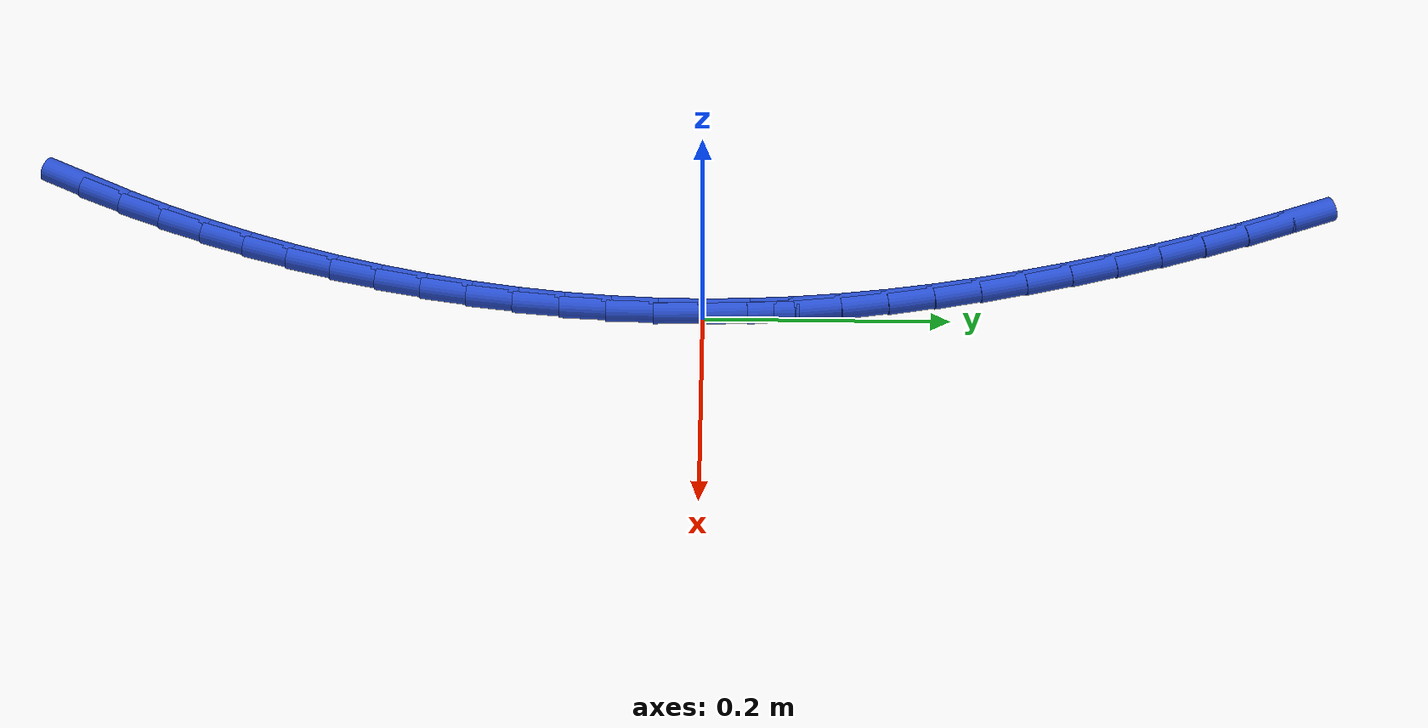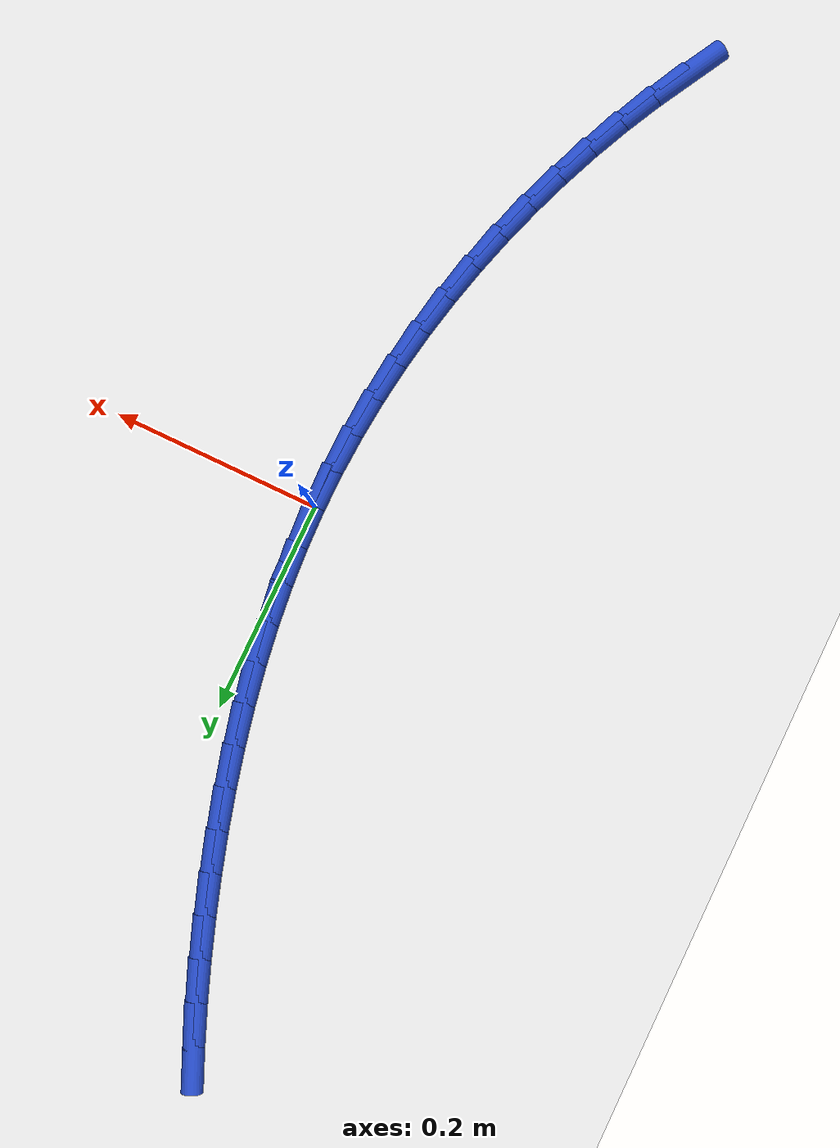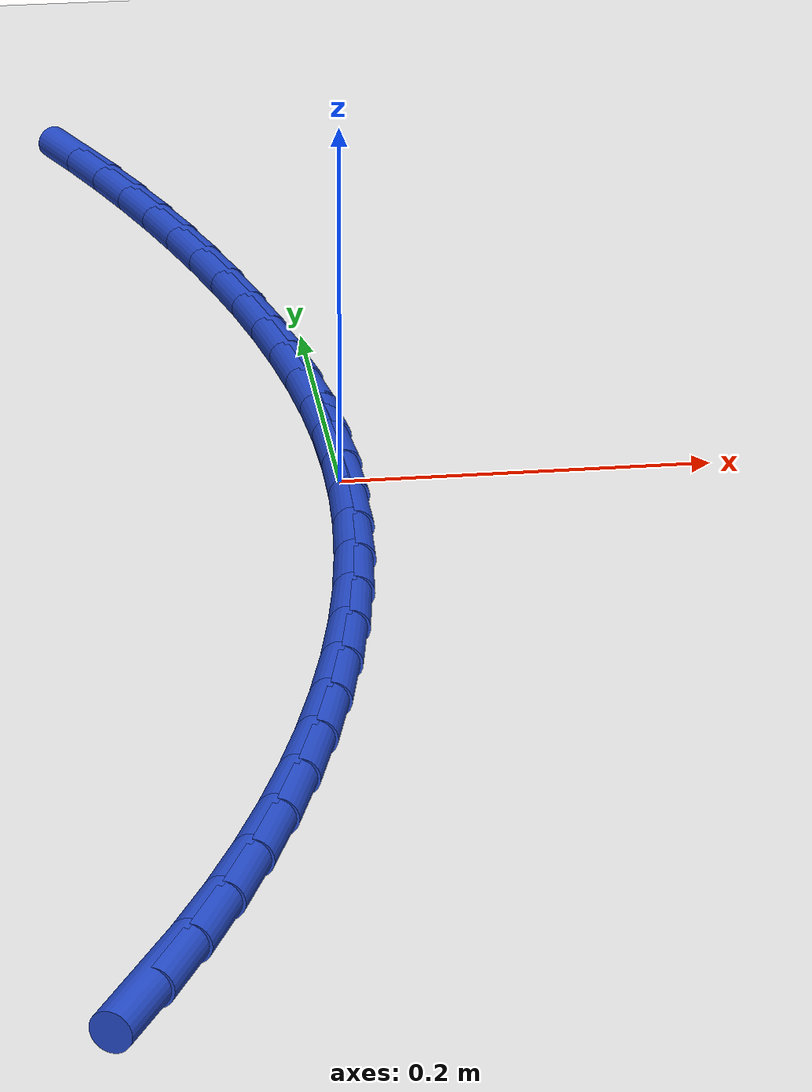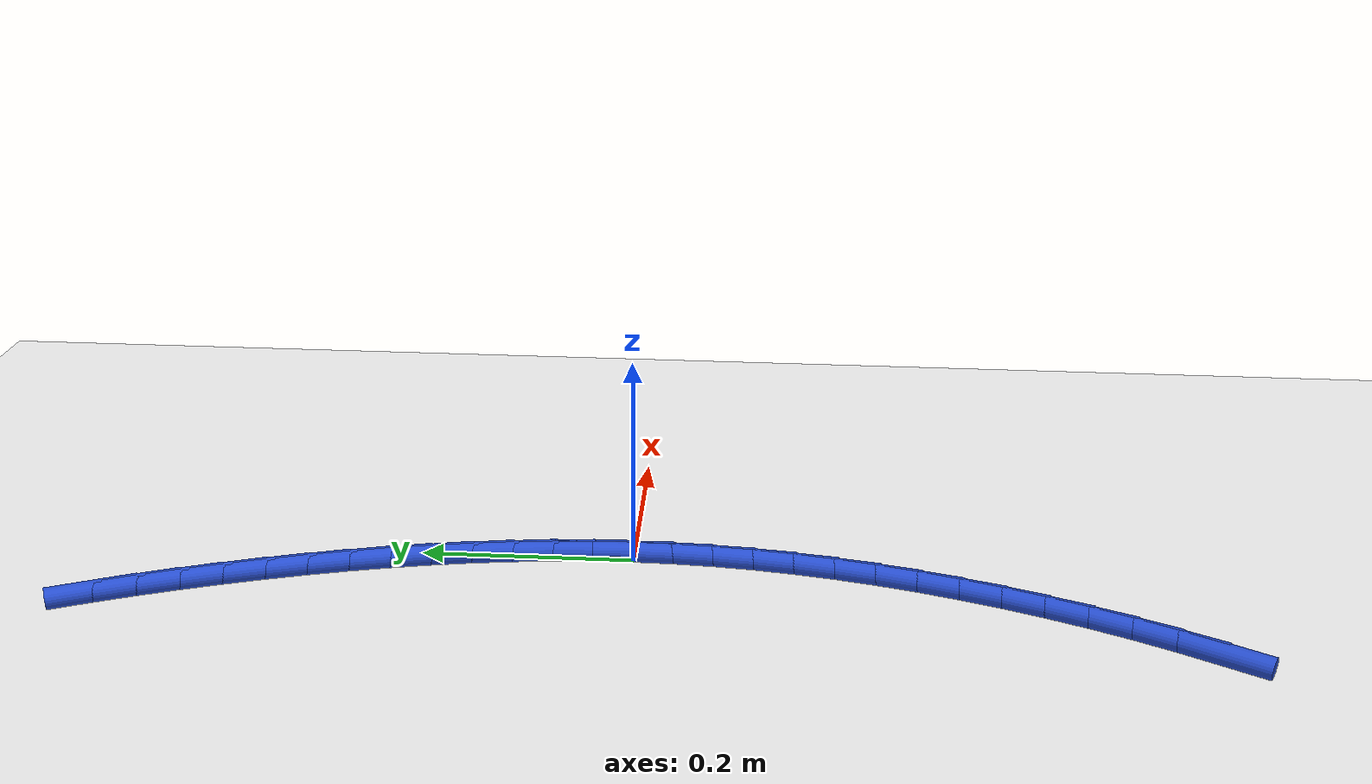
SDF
<sdf version="1.6">
 <world name="default">
  <model name="ground_plane">
   <static>1</static>
   <link name="link">
    <collision name="collision">
     <geometry><plane><normal>0 0 1</normal><size>100 100</size></plane></geometry>
     <surface><friction><ode><mu>100</mu><mu2>50</mu2></ode></friction></surface>
    </collision>
    <visual name="visual">
     <cast_shadows>0</cast_shadows>
     <geometry><plane><normal>0 0 1</normal><size>100 100</size></plane></geometry>
     <material>
      <script><uri>file://media/materials/scripts/gazebo.material</uri><name>Gazebo/WhiteGlow</name></script>
     </material>
    </visual>
   </link>
  </model>
  <model name="line">
   <link name="link_0">
    <pose>-2.7755575615628914e-17 1.3877787807814457e-17 0.01 0 1.57 -1.5406374045841118</pose>
    <collision name="collision">
     <geometry><cylinder><radius>0.01</radius><length>0.08</length></cylinder></geometry>
    </collision>
    <visual name="visual">
     <material>
      <script><name>Gazebo/Blue</name><uri>file://media/materials/scripts/gazebo.material</uri></script>
     </material>
     <geometry><cylinder><radius>0.01</radius><length>0.08</length></cylinder></geometry>
    </visual>
   </link>
   <link name="link_1">
    <pose>-0.0011392396396819676 0.03776309406163166 0.01 0 1.57 -1.5000262374223226</pose>
    <collision name="collision">
     <geometry><cylinder><radius>0.01</radius><length>0.08</length></cylinder></geometry>
    </collision>
    <visual name="visual">
     <material>
      <script><name>Gazebo/Blue</name><uri>file://media/materials/scripts/gazebo.material</uri></script>
     </material>
     <geometry><cylinder><radius>0.01</radius><length>0.08</length></cylinder></geometry>
    </visual>
   </link>
   <link name="link_2">
    <pose>-0.0038113882761057626 0.07545820087612244 0.01 0 1.57 -1.4617151489560283</pose>
    <collision name="collision">
     <geometry><cylinder><radius>0.01</radius><length>0.08</length></cylinder></geometry>
    </collision>
    <visual name="visual">
     <material>
      <script><name>Gazebo/Blue</name><uri>file://media/materials/scripts/gazebo.material</uri></script>
     </material>
     <geometry><cylinder><radius>0.01</radius><length>0.08</length></cylinder></geometry>
    </visual>
   </link>
   <link name="link_3">
    <pose>-0.00792903573921639 0.11305683172591276 0.01 0 1.57 -1.425700947851287</pose>
    <collision name="collision">
     <geometry><cylinder><radius>0.01</radius><length>0.08</length></cylinder></geometry>
    </collision>
    <visual name="visual">
     <material>
      <script><name>Gazebo/Blue</name><uri>file://media/materials/scripts/gazebo.material</uri></script>
     </material>
     <geometry><cylinder><radius>0.01</radius><length>0.08</length></cylinder></geometry>
    </visual>
   </link>
   <link name="link_4">
    <pose>-0.01340477185895883 0.150530497893443 0.01 0 1.57 -1.3919566226149385</pose>
    <collision name="collision">
     <geometry><cylinder><radius>0.01</radius><length>0.08</length></cylinder></geometry>
    </collision>
    <visual name="visual">
     <material>
      <script><name>Gazebo/Blue</name><uri>file://media/materials/scripts/gazebo.material</uri></script>
     </material>
     <geometry><cylinder><radius>0.01</radius><length>0.08</length></cylinder></geometry>
    </visual>
   </link>
   <link name="link_5">
    <pose>-0.020151186465278047 0.18785071066115358 0.01 0 1.57 -1.36043728218958</pose>
    <collision name="collision">
     <geometry><cylinder><radius>0.01</radius><length>0.08</length></cylinder></geometry>
    </collision>
    <visual name="visual">
     <material>
      <script><name>Gazebo/Blue</name><uri>file://media/materials/scripts/gazebo.material</uri></script>
     </material>
     <geometry><cylinder><radius>0.01</radius><length>0.08</length></cylinder></geometry>
    </visual>
   </link>
   <link name="link_6">
    <pose>-0.028080869388119004 0.22498898131148481 0.01 0 1.57 -1.3310855227287415</pose>
    <collision name="collision">
     <geometry><cylinder><radius>0.01</radius><length>0.08</length></cylinder></geometry>
    </collision>
    <visual name="visual">
     <material>
      <script><name>Gazebo/Blue</name><uri>file://media/materials/scripts/gazebo.material</uri></script>
     </material>
     <geometry><cylinder><radius>0.01</radius><length>0.08</length></cylinder></geometry>
    </visual>
   </link>
   <link name="link_7">
    <pose>-0.0371064104574267 0.26191682112687725 0.01 0 1.57 -1.3038361089501525</pose>
    <collision name="collision">
     <geometry><cylinder><radius>0.01</radius><length>0.08</length></cylinder></geometry>
    </collision>
    <visual name="visual">
     <material>
      <script><name>Gazebo/Blue</name><uri>file://media/materials/scripts/gazebo.material</uri></script>
     </material>
     <geometry><cylinder><radius>0.01</radius><length>0.08</length></cylinder></geometry>
    </visual>
   </link>
   <link name="link_8">
    <pose>-0.047140399503146115 0.2986057413897713 0.01 0 1.57 -1.2786199484833694</pose>
    <collision name="collision">
     <geometry><cylinder><radius>0.01</radius><length>0.08</length></cylinder></geometry>
    </collision>
    <visual name="visual">
     <material>
      <script><name>Gazebo/Blue</name><uri>file://media/materials/scripts/gazebo.material</uri></script>
     </material>
     <geometry><cylinder><radius>0.01</radius><length>0.08</length></cylinder></geometry>
    </visual>
   </link>
   <link name="link_9">
    <pose>-0.058095426355222204 0.33502725338260736 0.01 0 1.57 -1.2551441013084685</pose>
    <collision name="collision">
     <geometry><cylinder><radius>0.01</radius><length>0.08</length></cylinder></geometry>
    </collision>
    <visual name="visual">
     <material>
      <script><name>Gazebo/Blue</name><uri>file://media/materials/scripts/gazebo.material</uri></script>
     </material>
     <geometry><cylinder><radius>0.01</radius><length>0.08</length></cylinder></geometry>
    </visual>
   </link>
   <link name="link_10">
    <pose>-0.06989311221895424 0.3711531897543148 0.01 0 1.57 -1.2317439700458501</pose>
    <collision name="collision">
     <geometry><cylinder><radius>0.01</radius><length>0.08</length></cylinder></geometry>
    </collision>
    <visual name="visual">
     <material>
      <script><name>Gazebo/Blue</name><uri>file://media/materials/scripts/gazebo.material</uri></script>
     </material>
     <geometry><cylinder><radius>0.01</radius><length>0.08</length></cylinder></geometry>
    </visual>
   </link>
   <link name="link_11">
    <pose>-0.08252032686424875 0.4069577049156046 0.01 0 1.57 -1.207695170480475</pose>
    <collision name="collision">
     <geometry><cylinder><radius>0.01</radius><length>0.08</length></cylinder></geometry>
    </collision>
    <visual name="visual">
     <material>
      <script><name>Gazebo/Blue</name><uri>file://media/materials/scripts/gazebo.material</uri></script>
     </material>
     <geometry><cylinder><radius>0.01</radius><length>0.08</length></cylinder></geometry>
    </visual>
   </link>
   <link name="link_12">
    <pose>-0.09599260824682476 0.4424159733869563 0.01 0 1.57 -1.1829866456857006</pose>
    <collision name="collision">
     <geometry><cylinder><radius>0.01</radius><length>0.08</length></cylinder></geometry>
    </collision>
    <visual name="visual">
     <material>
      <script><name>Gazebo/Blue</name><uri>file://media/materials/scripts/gazebo.material</uri></script>
     </material>
     <geometry><cylinder><radius>0.01</radius><length>0.08</length></cylinder></geometry>
    </visual>
   </link>
   <link name="link_13">
    <pose>-0.11032561764644747 0.47750317407713105 0.01 0 1.57 -1.1576131329335435</pose>
    <collision name="collision">
     <geometry><cylinder><radius>0.01</radius><length>0.08</length></cylinder></geometry>
    </collision>
    <visual name="visual">
     <material>
      <script><name>Gazebo/Blue</name><uri>file://media/materials/scripts/gazebo.material</uri></script>
     </material>
     <geometry><cylinder><radius>0.01</radius><length>0.08</length></cylinder></geometry>
    </visual>
   </link>
   <link name="link_166">
    <pose>-0.13723699491443364 -0.5077308798519887 0.01 0 1.57 1.0630580494791013</pose>
    <collision name="collision">
     <geometry><cylinder><radius>0.01</radius><length>0.08</length></cylinder></geometry>
    </collision>
    <visual name="visual">
     <material>
      <script><name>Gazebo/Blue</name><uri>file://media/materials/scripts/gazebo.material</uri></script>
     </material>
     <geometry><cylinder><radius>0.01</radius><length>0.08</length></cylinder></geometry>
    </visual>
   </link>
   <link name="link_167">
    <pose>-0.11876558988477265 -0.4745323993902425 0.01 0 1.57 1.1025219018681045</pose>
    <collision name="collision">
     <geometry><cylinder><radius>0.01</radius><length>0.08</length></cylinder></geometry>
    </collision>
    <visual name="visual">
     <material>
      <script><name>Gazebo/Blue</name><uri>file://media/materials/scripts/gazebo.material</uri></script>
     </material>
     <geometry><cylinder><radius>0.01</radius><length>0.08</length></cylinder></geometry>
    </visual>
   </link>
   <link name="link_168">
    <pose>-0.1016009026984971 -0.44059647621296516 0.01 0 1.57 1.140786840777429</pose>
    <collision name="collision">
     <geometry><cylinder><radius>0.01</radius><length>0.08</length></cylinder></geometry>
    </collision>
    <visual name="visual">
     <material>
      <script><name>Gazebo/Blue</name><uri>file://media/materials/scripts/gazebo.material</uri></script>
     </material>
     <geometry><cylinder><radius>0.01</radius><length>0.08</length></cylinder></geometry>
    </visual>
   </link>
   <link name="link_169">
    <pose>-0.08573206687844032 -0.40599614663592115 0.01 0 1.57 1.177928163824066</pose>
    <collision name="collision">
     <geometry><cylinder><radius>0.01</radius><length>0.08</length></cylinder></geometry>
    </collision>
    <visual name="visual">
     <material>
      <script><name>Gazebo/Blue</name><uri>file://media/materials/scripts/gazebo.material</uri></script>
     </material>
     <geometry><cylinder><radius>0.01</radius><length>0.08</length></cylinder></geometry>
    </visual>
   </link>
   <link name="link_170">
    <pose>-0.07114821594743537 -0.3708044469748745 0.01 0 1.57 1.2140304515697105</pose>
    <collision name="collision">
     <geometry><cylinder><radius>0.01</radius><length>0.08</length></cylinder></geometry>
    </collision>
    <visual name="visual">
     <material>
      <script><name>Gazebo/Blue</name><uri>file://media/materials/scripts/gazebo.material</uri></script>
     </material>
     <geometry><cylinder><radius>0.01</radius><length>0.08</length></cylinder></geometry>
    </visual>
   </link>
   <link name="link_171">
    <pose>-0.0578385426307308 -0.33509439109006794 0.01 0 1.57 1.2495685012624416</pose>
    <collision name="collision">
     <geometry><cylinder><radius>0.01</radius><length>0.08</length></cylinder></geometry>
    </collision>
    <visual name="visual">
     <material>
      <script><name>Gazebo/Blue</name><uri>file://media/materials/scripts/gazebo.material</uri></script>
     </material>
     <geometry><cylinder><radius>0.01</radius><length>0.08</length></cylinder></geometry>
    </visual>
   </link>
   <link name="link_172">
    <pose>-0.045806001980369666 -0.2989337727801269 0.01 0 1.57 1.2855109507170936</pose>
    <collision name="collision">
     <geometry><cylinder><radius>0.01</radius><length>0.08</length></cylinder></geometry>
    </collision>
    <visual name="visual">
     <material>
      <script><name>Gazebo/Blue</name><uri>file://media/materials/scripts/gazebo.material</uri></script>
     </material>
     <geometry><cylinder><radius>0.01</radius><length>0.08</length></cylinder></geometry>
    </visual>
   </link>
   <link name="link_173">
    <pose>-0.035084871995543915 -0.2623785050246486 0.01 0 1.57 1.3220664200940235</pose>
    <collision name="collision">
     <geometry><cylinder><radius>0.01</radius><length>0.08</length></cylinder></geometry>
    </collision>
    <visual name="visual">
     <material>
      <script><name>Gazebo/Blue</name><uri>file://media/materials/scripts/gazebo.material</uri></script>
     </material>
     <geometry><cylinder><radius>0.01</radius><length>0.08</length></cylinder></geometry>
    </visual>
   </link>
   <link name="link_174">
    <pose>-0.02571376623891123 -0.22548285632052276 0.01 0 1.57 1.3593186573102736</pose>
    <collision name="collision">
     <geometry><cylinder><radius>0.01</radius><length>0.08</length></cylinder></geometry>
    </collision>
    <visual name="visual">
     <material>
      <script><name>Gazebo/Blue</name><uri>file://media/materials/scripts/gazebo.material</uri></script>
     </material>
     <geometry><cylinder><radius>0.01</radius><length>0.08</length></cylinder></geometry>
    </visual>
   </link>
   <link name="link_175">
    <pose>-0.0177312982731293 -0.18830109516463925 0.01 0 1.57 1.3973474559410917</pose>
    <collision name="collision">
     <geometry><cylinder><radius>0.01</radius><length>0.08</length></cylinder></geometry>
    </collision>
    <visual name="visual">
     <material>
      <script><name>Gazebo/Blue</name><uri>file://media/materials/scripts/gazebo.material</uri></script>
     </material>
     <geometry><cylinder><radius>0.01</radius><length>0.08</length></cylinder></geometry>
    </visual>
   </link>
   <link name="link_176">
    <pose>-0.011176081660855696 -0.15088749005388719 0.01 0 1.57 1.4362276880244405</pose>
    <collision name="collision">
     <geometry><cylinder><radius>0.01</radius><length>0.08</length></cylinder></geometry>
    </collision>
    <visual name="visual">
     <material>
      <script><name>Gazebo/Blue</name><uri>file://media/materials/scripts/gazebo.material</uri></script>
     </material>
     <geometry><cylinder><radius>0.01</radius><length>0.08</length></cylinder></geometry>
    </visual>
   </link>
   <link name="link_177">
    <pose>-0.006086729964748367 -0.11329630948515781 0.01 0 1.57 1.4760281067741035</pose>
    <collision name="collision">
     <geometry><cylinder><radius>0.01</radius><length>0.08</length></cylinder></geometry>
    </collision>
    <visual name="visual">
     <material>
      <script><name>Gazebo/Blue</name><uri>file://media/materials/scripts/gazebo.material</uri></script>
     </material>
     <geometry><cylinder><radius>0.01</radius><length>0.08</length></cylinder></geometry>
    </visual>
   </link>
   <link name="link_178">
    <pose>-0.0025018567474648567 -0.07558182195534027 0.01 0 1.57 1.5168099101327637</pose>
    <collision name="collision">
     <geometry><cylinder><radius>0.01</radius><length>0.08</length></cylinder></geometry>
    </collision>
    <visual name="visual">
     <material>
      <script><name>Gazebo/Blue</name><uri>file://media/materials/scripts/gazebo.material</uri></script>
     </material>
     <geometry><cylinder><radius>0.01</radius><length>0.08</length></cylinder></geometry>
    </visual>
   </link>
   <link name="link_179">
    <pose>-0.0004600755716628463 -0.03779829596132437 0.01 0 1.57 1.5586250677136186</pose>
    <collision name="collision">
     <geometry><cylinder><radius>0.01</radius><length>0.08</length></cylinder></geometry>
    </collision>
    <visual name="visual">
     <material>
      <script><name>Gazebo/Blue</name><uri>file://media/materials/scripts/gazebo.material</uri></script>
     </material>
     <geometry><cylinder><radius>0.01</radius><length>0.08</length></cylinder></geometry>
    </visual>
   </link>
   <link name="link_180">
    <pose>-2.0816681711721685e-17 9.020562075079397e-17 0.01 0 1.57 -1.5400782235961559</pose>
    <collision name="collision">
     <geometry><cylinder><radius>0.01</radius><length>0.08</length></cylinder></geometry>
    </collision>
    <visual name="visual">
     <material>
      <script><name>Gazebo/Blue</name><uri>file://media/materials/scripts/gazebo.material</uri></script>
     </material>
     <geometry><cylinder><radius>0.01</radius><length>0.08</length></cylinder></geometry>
    </visual>
   </link>
   <link name="link_181">
    <pose>-0.001160243595134074 0.03775879743174325 0.01 0 1.57 -1.540078223596156</pose>
    <collision name="collision">
     <geometry><cylinder><radius>0.01</radius><length>0.08</length></cylinder></geometry>
    </collision>
    <visual name="visual">
     <material>
      <script><name>Gazebo/Blue</name><uri>file://media/materials/scripts/gazebo.material</uri></script>
     </material>
     <geometry><cylinder><radius>0.01</radius><length>0.08</length></cylinder></geometry>
    </visual>
   </link>
  </model>
 </world>
</sdf>
